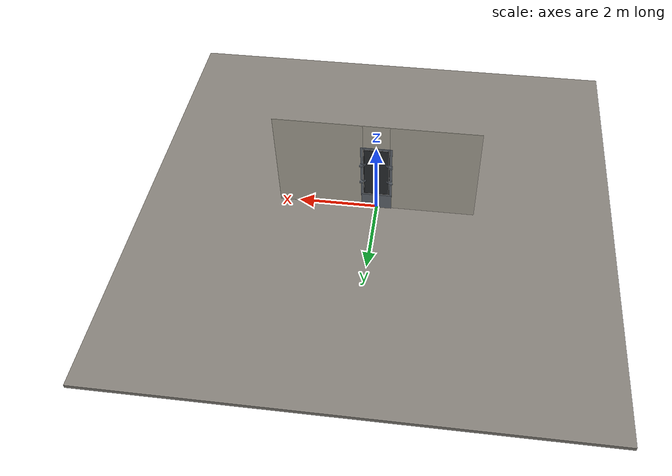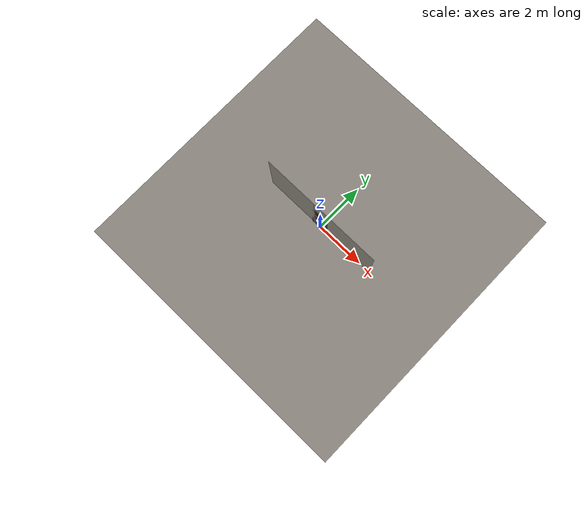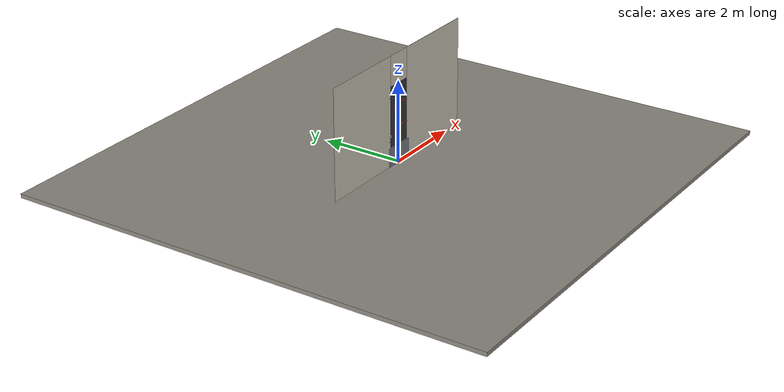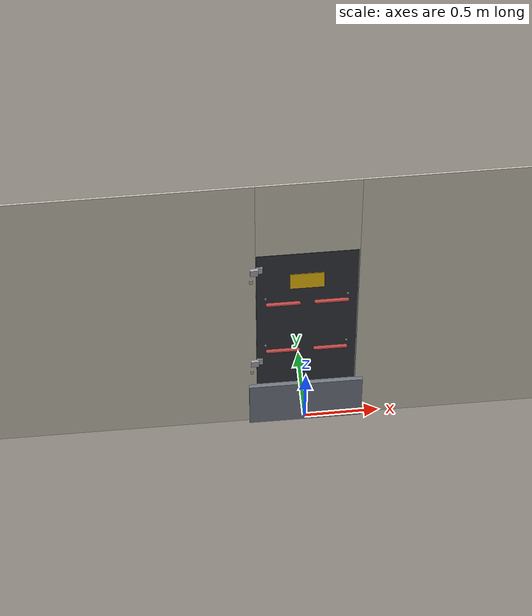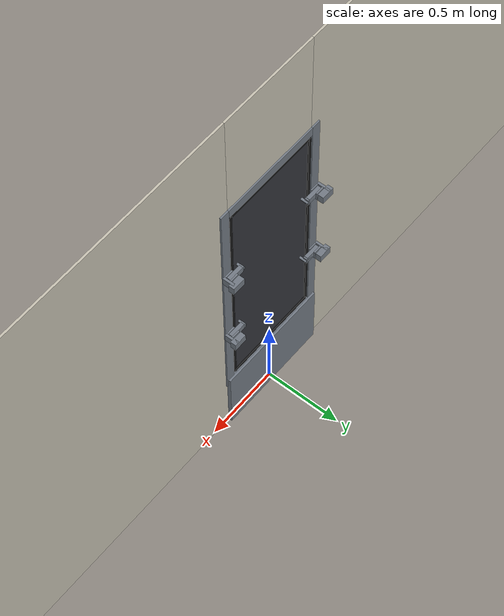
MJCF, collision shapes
<?xml version="1.0" ?>
<mujoco model="db0285_ship_watertight_full">
  <compiler angle="radian" meshdir="../../hardware" texturedir="../../textures" autolimits="true" inertiafromgeom="false"/>
  <option timestep="0.002" integrator="implicitfast" cone="elliptic" impratio="10" noslip_iterations="3">
    <flag multiccd="enable"/>
  </option>
  <size memory="16M"/>
  <default>
    <geom condim="4" solref="0.005 1" solimp="0.95 0.99 0.001"/>
    <joint solreflimit="0.005 1" solimplimit="0.95 0.99 0.001"/>
    <tendon solreflimit="0.005 1"/>
    <equality solref="0.002 1"/>
  </default>
  <visual>
    <headlight ambient="0.4 0.4 0.4" diffuse="0.7 0.7 0.7" specular="0.2 0.2 0.2"/>
    <quality shadowsize="4096"/>
    <map znear="0.01" zfar="60"/>
  </visual>
  <asset>
    <mesh name="hinge_aa6f1f959a" file="hinge_aa6f1f959a.obj"/>
    <mesh name="hinge_jamb_5a3d6f5c54" file="hinge_jamb_5a3d6f5c54.obj"/>
    <mesh name="lever_88a39579f3" file="lever_88a39579f3.obj"/>
    <material name="mat_floor" rgba="0.55 0.53 0.5 1" specular="0.2" shininess="0.15" reflectance="0"/>
    <material name="mat_wall" rgba="0.78 0.76 0.7 1" specular="0.2" shininess="0.1" reflectance="0"/>
    <material name="mat_leaf" rgba="0.2 0.21 0.23 1" specular="0.23" shininess="0.34" reflectance="0.02"/>
    <material name="mat_frame" rgba="0.45 0.48 0.52 1" specular="0.32" shininess="0.6" reflectance="0.08"/>
    <material name="mat_gasket" rgba="0.08 0.08 0.08 1" specular="0.2" shininess="0.1" reflectance="0"/>
    <material name="mat_op_steel_painted" rgba="0.45 0.48 0.52 1" specular="0.32" shininess="0.6" reflectance="0.08"/>
    <material name="mat_hinge" rgba="0.65 0.66 0.68 1" specular="0.74" shininess="0.5" reflectance="0.36"/>
    <material name="mat_placard" rgba="0.95 0.75 0.05 1" specular="0.2" shininess="0.5" reflectance="0"/>
    <texture name="skybox" type="skybox" builtin="gradient" rgb1="0.6 0.7 0.85" rgb2="0.9 0.92 0.95" width="256" height="256"/>
  </asset>
  <worldbody>
    <light name="sun" pos="1.5 -2.5 4" dir="-0.3 0.5 -0.8" directional="true" diffuse="0.8 0.8 0.8" specular="0.3 0.3 0.3" castshadow="true"/>
    <light name="fill" pos="-1.5 2.5 3" dir="0.3 -0.5 -0.7" directional="true" diffuse="0.35 0.35 0.4" castshadow="false"/>
    <camera name="robot_view" pos="0 -2.040625 1.551375" xyaxes="1 0 0 0 0.26963 0.962964" fovy="52"/>
    <camera name="far_view" pos="0 2.040625 1.551375" xyaxes="-1 0 0 0 -0.26963 0.962964" fovy="52"/>
    <camera name="iso" pos="1.550875 -1.714125 1.877875" xyaxes="0.741536 0.670913 0 -0.242917 0.268487 0.932151" fovy="46"/>
    <camera name="detail_handle" pos="0.264 -0.854 1.205" xyaxes="0.97561 0.219512 0 -0.070934 0.315262 0.94635" fovy="38"/>
    <geom name="floor" type="box" size="6 6 0.05" pos="0 0 -0.05" material="mat_floor" group="0" contype="1" conaffinity="1" friction="0.8 0.005 0.0001" density="2400"/>
    <geom name="wall_left" type="box" size="1.085 0.006 1.35" pos="-1.415 0 1.35" material="mat_wall" group="0" contype="1" conaffinity="1" friction="0.6 0.005 0.0001" density="800"/>
    <geom name="wall_right" type="box" size="1.085 0.006 1.35" pos="1.415 0 1.35" material="mat_wall" group="0" contype="1" conaffinity="1" friction="0.6 0.005 0.0001" density="800"/>
    <geom name="wall_header" type="box" size="0.33 0.006 0.37" pos="0 0 2.33" material="mat_wall" group="0" contype="1" conaffinity="1" friction="0.6 0.005 0.0001" density="800"/>
    <geom name="flange_l" type="box" size="0.03 0.006 0.815" pos="-0.36 0.01 1.205" material="mat_frame" group="0" contype="1" conaffinity="1" friction="0.6 0.005 0.0001" solref="0.02 1" density="7850"/>
    <geom name="flange_r" type="box" size="0.03 0.006 0.815" pos="0.36 0.01 1.205" material="mat_frame" group="0" contype="1" conaffinity="1" friction="0.6 0.005 0.0001" solref="0.02 1" density="7850"/>
    <geom name="flange_t" type="box" size="0.33 0.006 0.03" pos="0 0.01 1.99" material="mat_frame" group="0" contype="1" conaffinity="1" friction="0.6 0.005 0.0001" solref="0.02 1" density="7850"/>
    <geom name="flange_b" type="box" size="0.33 0.006 0.03" pos="0 0.01 0.42" material="mat_frame" group="0" contype="1" conaffinity="1" friction="0.6 0.005 0.0001" solref="0.02 1" density="7850"/>
    <geom name="coaming" type="box" size="0.38 0.03 0.225" pos="0 0 0.225" material="mat_frame" group="0" contype="1" conaffinity="1" friction="0.6 0.005 0.0001" density="7850"/>
    <geom name="cleat_0" type="box" size="0.0275 0.005 0.025" pos="0.3515 0.0205 0.925" material="mat_frame" group="0" contype="1" conaffinity="1" friction="0.6 0.005 0.0001" density="7850"/>
    <geom name="cleat_0_outer" type="box" size="0.0275 0.005 0.025" pos="0.3515 0.0555 0.925" material="mat_frame" group="0" contype="1" conaffinity="1" friction="0.6 0.005 0.0001" density="7850"/>
    <geom name="cleat_0_base" type="box" size="0.0425 0.018 0.025" pos="0.3665 0.084 0.925" material="mat_frame" group="0" contype="1" conaffinity="1" friction="0.6 0.005 0.0001" density="7850"/>
    <geom name="cleat_0_bridge" type="box" size="0.008 0.041 0.025" pos="0.387 0.057 0.925" material="mat_frame" group="0" contype="1" conaffinity="1" friction="0.6 0.005 0.0001" density="7850"/>
    <geom name="cleat_1" type="box" size="0.0275 0.005 0.025" pos="-0.3535 0.0205 0.925" material="mat_frame" group="0" contype="1" conaffinity="1" friction="0.6 0.005 0.0001" density="7850"/>
    <geom name="cleat_1_outer" type="box" size="0.0275 0.005 0.025" pos="-0.3535 0.0555 0.925" material="mat_frame" group="0" contype="1" conaffinity="1" friction="0.6 0.005 0.0001" density="7850"/>
    <geom name="cleat_1_base" type="box" size="0.0425 0.018 0.025" pos="-0.3685 0.084 0.925" material="mat_frame" group="0" contype="1" conaffinity="1" friction="0.6 0.005 0.0001" density="7850"/>
    <geom name="cleat_1_bridge" type="box" size="0.008 0.041 0.025" pos="-0.389 0.057 0.925" material="mat_frame" group="0" contype="1" conaffinity="1" friction="0.6 0.005 0.0001" density="7850"/>
    <geom name="cleat_2" type="box" size="0.0275 0.005 0.025" pos="0.3515 0.0205 1.475" material="mat_frame" group="0" contype="1" conaffinity="1" friction="0.6 0.005 0.0001" density="7850"/>
    <geom name="cleat_2_outer" type="box" size="0.0275 0.005 0.025" pos="0.3515 0.0555 1.475" material="mat_frame" group="0" contype="1" conaffinity="1" friction="0.6 0.005 0.0001" density="7850"/>
    <geom name="cleat_2_base" type="box" size="0.0425 0.018 0.025" pos="0.3665 0.084 1.475" material="mat_frame" group="0" contype="1" conaffinity="1" friction="0.6 0.005 0.0001" density="7850"/>
    <geom name="cleat_2_bridge" type="box" size="0.008 0.041 0.025" pos="0.387 0.057 1.475" material="mat_frame" group="0" contype="1" conaffinity="1" friction="0.6 0.005 0.0001" density="7850"/>
    <geom name="cleat_3" type="box" size="0.0275 0.005 0.025" pos="-0.3535 0.0205 1.475" material="mat_frame" group="0" contype="1" conaffinity="1" friction="0.6 0.005 0.0001" density="7850"/>
    <geom name="cleat_3_outer" type="box" size="0.0275 0.005 0.025" pos="-0.3535 0.0555 1.475" material="mat_frame" group="0" contype="1" conaffinity="1" friction="0.6 0.005 0.0001" density="7850"/>
    <geom name="cleat_3_base" type="box" size="0.0425 0.018 0.025" pos="-0.3685 0.084 1.475" material="mat_frame" group="0" contype="1" conaffinity="1" friction="0.6 0.005 0.0001" density="7850"/>
    <geom name="cleat_3_bridge" type="box" size="0.008 0.041 0.025" pos="-0.389 0.057 1.475" material="mat_frame" group="0" contype="1" conaffinity="1" friction="0.6 0.005 0.0001" density="7850"/>
    <geom name="hinge_0_jamb" type="mesh" mesh="hinge_jamb_5a3d6f5c54" pos="-0.36 -0.024 0.704" material="mat_hinge" group="1" contype="0" conaffinity="0" density="7850"/>
    <geom name="hinge_0_jamb_lug" type="box" size="0.01 0.004 0.02" pos="-0.36 -0.01 0.617" material="mat_hinge" group="1" contype="0" conaffinity="0" density="7850"/>
    <geom name="hinge_1_jamb" type="mesh" mesh="hinge_jamb_5a3d6f5c54" pos="-0.36 -0.024 1.774" material="mat_hinge" group="1" contype="0" conaffinity="0" density="7850"/>
    <geom name="hinge_1_jamb_lug" type="box" size="0.01 0.004 0.02" pos="-0.36 -0.01 1.687" material="mat_hinge" group="1" contype="0" conaffinity="0" density="7850"/>
    <site name="approach_point" pos="0 -1.5 0" quat="1 0 0 0" size="0.05" rgba="0.2 0.9 0.2 0.5" group="4"/>
    <site name="goal_point" pos="0 1.5 0" quat="1 0 0 0" size="0.05" rgba="0.2 0.9 0.2 0.5" group="4"/>
    <site name="door_plane_center" pos="0 0 1.205" quat="1 0 0 0" size="0.02" rgba="0.2 0.9 0.2 0.5" group="4"/>
    <body name="leaf" pos="-0.33 0 0.45">
      <inertial pos="0.313452 -0.000857 0.756701" mass="64.391107" quat="0.503119 0.49919 0.500908 -0.496761" diaginertia="2.529513531 12.449053826 14.975315502"/>
      <joint name="leaf_hinge" type="hinge" axis="0 0 -1" pos="-0.03 -0.024 0" limited="true" range="0 1.919862" solreflimit="0.02 1" damping="0.098357" frictionloss="5.877685" armature="0.02"/>
      <geom name="leaf_slab" type="box" size="0.325 0.004 0.75" pos="0.329 0 0.754" material="mat_leaf" group="0" contype="1" conaffinity="1" friction="0.4 0.005 0.0001" density="1"/>
      <geom name="gasket_l" type="box" size="0.01 0.004 0.74" pos="0.014 0.008 0.754" material="mat_gasket" group="1" contype="0" conaffinity="0" density="1100"/>
      <geom name="gasket_r" type="box" size="0.01 0.004 0.74" pos="0.644 0.008 0.754" material="mat_gasket" group="1" contype="0" conaffinity="0" density="1100"/>
      <geom name="gasket_b" type="box" size="0.315 0.004 0.01" pos="0.329 0.008 0.014" material="mat_gasket" group="1" contype="0" conaffinity="0" density="1100"/>
      <geom name="gasket_t" type="box" size="0.315 0.004 0.01" pos="0.329 0.008 1.494" material="mat_gasket" group="1" contype="0" conaffinity="0" density="1100"/>
      <geom name="hinge_0" type="mesh" mesh="hinge_aa6f1f959a" pos="-0.03 -0.024 0.254" material="mat_hinge" group="1" contype="0" conaffinity="0" density="7850"/>
      <geom name="hinge_0_lug_foot" type="box" size="0.02 0.0045 0.03" pos="0.026 -0.0085 0.287" material="mat_hinge" group="1" contype="0" conaffinity="0" density="7850"/>
      <geom name="hinge_0_lug" type="box" size="0.026 0.0095 0.03" pos="-0.01 -0.0205 0.287" material="mat_hinge" group="1" contype="0" conaffinity="0" density="7850"/>
      <geom name="hinge_1" type="mesh" mesh="hinge_aa6f1f959a" pos="-0.03 -0.024 1.324" material="mat_hinge" group="1" contype="0" conaffinity="0" density="7850"/>
      <geom name="hinge_1_lug_foot" type="box" size="0.02 0.0045 0.03" pos="0.026 -0.0085 1.357" material="mat_hinge" group="1" contype="0" conaffinity="0" density="7850"/>
      <geom name="hinge_1_lug" type="box" size="0.026 0.0095 0.03" pos="-0.01 -0.0205 1.357" material="mat_hinge" group="1" contype="0" conaffinity="0" density="7850"/>
      <geom name="warning_placard" type="box" size="0.11 0.001 0.08" pos="0.329 -0.005 1.2" material="mat_placard" group="2" contype="0" conaffinity="0" density="1000"/>
      <body name="dog_0" pos="0.594 0 0.475">
        <inertial pos="-0.052877 -0.02388 0" mass="3.659723" quat="-0.180462 0 0 0.983582" diaginertia="0.002822767 0.039604522 0.041849602"/>
        <joint name="dog_0_hinge" type="hinge" axis="0 -1 0" limited="true" range="0 1.5708" damping="0.5" frictionloss="1.5" armature="0.005"/>
        <geom name="dog_0_lever" type="mesh" mesh="lever_88a39579f3" pos="0 -0.013 0" quat="0.707107 0.707107 0 0" material="mat_op_steel_painted" group="1" contype="0" conaffinity="0" density="7800"/>
        <geom name="dog_0_lever_col" type="capsule" size="0.0125 0.1" pos="-0.11 -0.054 0" quat="0.707107 0 0.707107 0" material="mat_op_steel_painted" group="3" contype="1" conaffinity="1" rgba="0.8 0.3 0.3 0.25" friction="0.7 0.01 0.0001" density="7800"/>
        <geom name="dog_0_wedge" type="box" size="0.05 0.012 0.02" pos="0.06 0.038 0" material="mat_op_steel_painted" group="0" contype="1" conaffinity="1" friction="0.6 0.005 0.0001" density="7800"/>
        <geom name="dog_0_shaft" type="cylinder" size="0.008 0.033" pos="0 0.017 0" quat="0.707107 -0.707107 0 0" material="mat_op_steel_painted" group="1" contype="0" conaffinity="0" density="7800"/>
        <geom name="dog_0_crank" type="box" size="0.026 0.012 0.018" pos="0.026 0.038 0" material="mat_op_steel_painted" group="1" contype="0" conaffinity="0" density="7800"/>
        <site name="dog_0_grip" pos="-0.18 -0.054 0" quat="1 0 0 0" size="0.012" rgba="0.2 0.9 0.2 0.5" group="4"/>
      </body>
      <body name="dog_1" pos="0.064 0 0.475">
        <inertial pos="0.052877 -0.02388 0" mass="3.659723" quat="0.180462 0 0 0.983582" diaginertia="0.002822767 0.039604522 0.041849602"/>
        <joint name="dog_1_hinge" type="hinge" axis="0 1 0" limited="true" range="0 1.5708" damping="0.5" frictionloss="1.5" armature="0.005"/>
        <geom name="dog_1_lever" type="mesh" mesh="lever_88a39579f3" pos="0 -0.013 0" quat="0 0 -0.707107 0.707107" material="mat_op_steel_painted" group="1" contype="0" conaffinity="0" density="7800"/>
        <geom name="dog_1_lever_col" type="capsule" size="0.0125 0.1" pos="0.11 -0.054 0" quat="0.707107 0 0.707107 0" material="mat_op_steel_painted" group="3" contype="1" conaffinity="1" rgba="0.8 0.3 0.3 0.25" friction="0.7 0.01 0.0001" density="7800"/>
        <geom name="dog_1_wedge" type="box" size="0.05 0.012 0.02" pos="-0.06 0.038 0" material="mat_op_steel_painted" group="0" contype="1" conaffinity="1" friction="0.6 0.005 0.0001" density="7800"/>
        <geom name="dog_1_shaft" type="cylinder" size="0.008 0.033" pos="0 0.017 0" quat="0.707107 -0.707107 0 0" material="mat_op_steel_painted" group="1" contype="0" conaffinity="0" density="7800"/>
        <geom name="dog_1_crank" type="box" size="0.026 0.012 0.018" pos="-0.026 0.038 0" material="mat_op_steel_painted" group="1" contype="0" conaffinity="0" density="7800"/>
        <site name="dog_1_grip" pos="0.18 -0.054 0" quat="1 0 0 0" size="0.012" rgba="0.2 0.9 0.2 0.5" group="4"/>
      </body>
      <body name="dog_2" pos="0.594 0 1.025">
        <inertial pos="-0.052877 -0.02388 0" mass="3.659723" quat="-0.180462 0 0 0.983582" diaginertia="0.002822767 0.039604522 0.041849602"/>
        <joint name="dog_2_hinge" type="hinge" axis="0 -1 0" limited="true" range="0 1.5708" damping="0.5" frictionloss="1.5" armature="0.005"/>
        <geom name="dog_2_lever" type="mesh" mesh="lever_88a39579f3" pos="0 -0.013 0" quat="0.707107 0.707107 0 0" material="mat_op_steel_painted" group="1" contype="0" conaffinity="0" density="7800"/>
        <geom name="dog_2_lever_col" type="capsule" size="0.0125 0.1" pos="-0.11 -0.054 0" quat="0.707107 0 0.707107 0" material="mat_op_steel_painted" group="3" contype="1" conaffinity="1" rgba="0.8 0.3 0.3 0.25" friction="0.7 0.01 0.0001" density="7800"/>
        <geom name="dog_2_wedge" type="box" size="0.05 0.012 0.02" pos="0.06 0.038 0" material="mat_op_steel_painted" group="0" contype="1" conaffinity="1" friction="0.6 0.005 0.0001" density="7800"/>
        <geom name="dog_2_shaft" type="cylinder" size="0.008 0.033" pos="0 0.017 0" quat="0.707107 -0.707107 0 0" material="mat_op_steel_painted" group="1" contype="0" conaffinity="0" density="7800"/>
        <geom name="dog_2_crank" type="box" size="0.026 0.012 0.018" pos="0.026 0.038 0" material="mat_op_steel_painted" group="1" contype="0" conaffinity="0" density="7800"/>
        <site name="dog_2_grip" pos="-0.18 -0.054 0" quat="1 0 0 0" size="0.012" rgba="0.2 0.9 0.2 0.5" group="4"/>
      </body>
      <body name="dog_3" pos="0.064 0 1.025">
        <inertial pos="0.052877 -0.02388 0" mass="3.659723" quat="0.180462 0 0 0.983582" diaginertia="0.002822767 0.039604522 0.041849602"/>
        <joint name="dog_3_hinge" type="hinge" axis="0 1 0" limited="true" range="0 1.5708" damping="0.5" frictionloss="1.5" armature="0.005"/>
        <geom name="dog_3_lever" type="mesh" mesh="lever_88a39579f3" pos="0 -0.013 0" quat="0 0 -0.707107 0.707107" material="mat_op_steel_painted" group="1" contype="0" conaffinity="0" density="7800"/>
        <geom name="dog_3_lever_col" type="capsule" size="0.0125 0.1" pos="0.11 -0.054 0" quat="0.707107 0 0.707107 0" material="mat_op_steel_painted" group="3" contype="1" conaffinity="1" rgba="0.8 0.3 0.3 0.25" friction="0.7 0.01 0.0001" density="7800"/>
        <geom name="dog_3_wedge" type="box" size="0.05 0.012 0.02" pos="-0.06 0.038 0" material="mat_op_steel_painted" group="0" contype="1" conaffinity="1" friction="0.6 0.005 0.0001" density="7800"/>
        <geom name="dog_3_shaft" type="cylinder" size="0.008 0.033" pos="0 0.017 0" quat="0.707107 -0.707107 0 0" material="mat_op_steel_painted" group="1" contype="0" conaffinity="0" density="7800"/>
        <geom name="dog_3_crank" type="box" size="0.026 0.012 0.018" pos="-0.026 0.038 0" material="mat_op_steel_painted" group="1" contype="0" conaffinity="0" density="7800"/>
        <site name="dog_3_grip" pos="0.18 -0.054 0" quat="1 0 0 0" size="0.012" rgba="0.2 0.9 0.2 0.5" group="4"/>
      </body>
    </body>
  </worldbody>
  <sensor>
    <jointpos name="leaf_hinge_pos" joint="leaf_hinge"/>
    <jointvel name="leaf_hinge_vel" joint="leaf_hinge"/>
    <jointpos name="dog_0_hinge_pos" joint="dog_0_hinge"/>
    <jointvel name="dog_0_hinge_vel" joint="dog_0_hinge"/>
    <jointpos name="dog_1_hinge_pos" joint="dog_1_hinge"/>
    <jointvel name="dog_1_hinge_vel" joint="dog_1_hinge"/>
    <jointpos name="dog_2_hinge_pos" joint="dog_2_hinge"/>
    <jointvel name="dog_2_hinge_vel" joint="dog_2_hinge"/>
    <jointpos name="dog_3_hinge_pos" joint="dog_3_hinge"/>
    <jointvel name="dog_3_hinge_vel" joint="dog_3_hinge"/>
  </sensor>
</mujoco>
